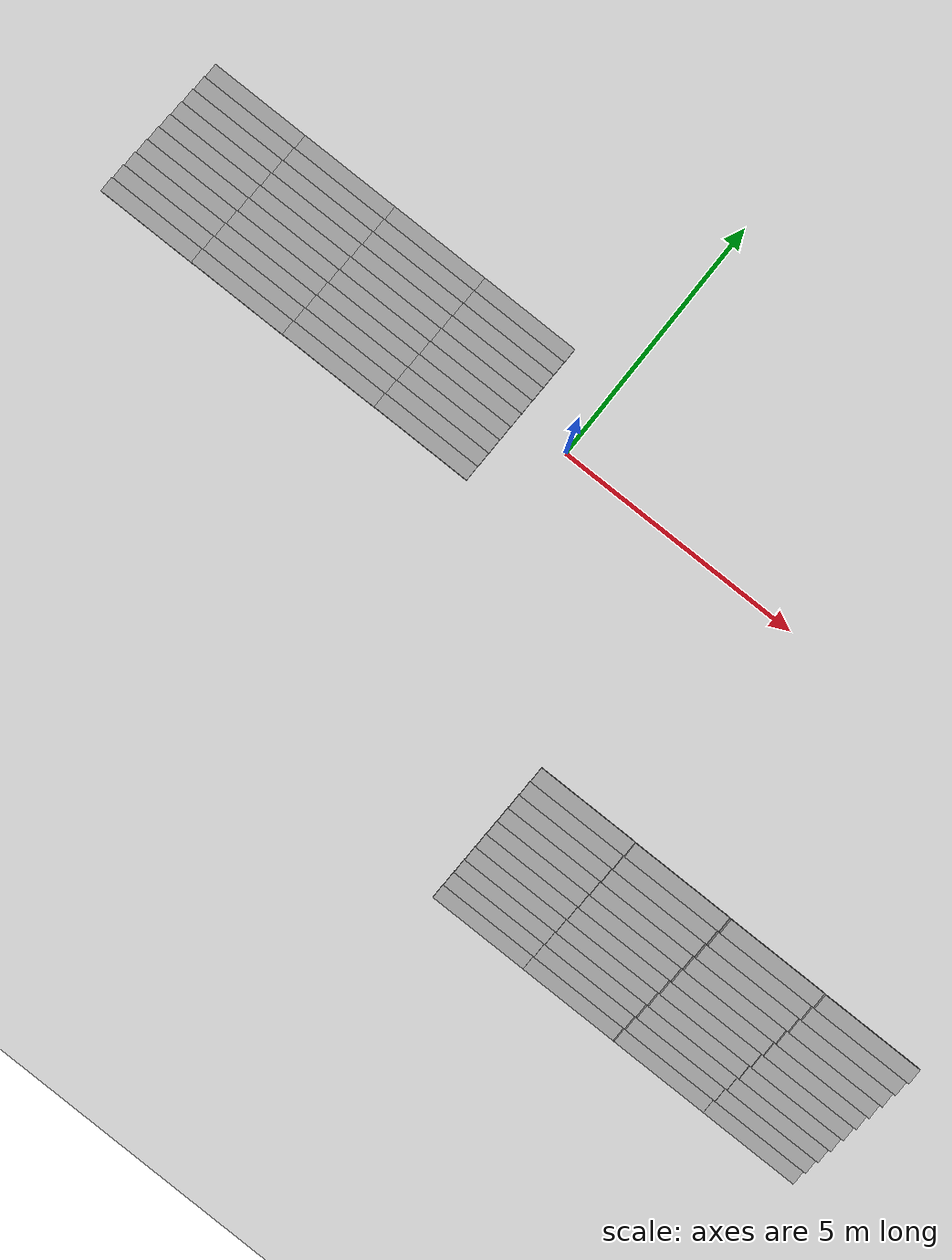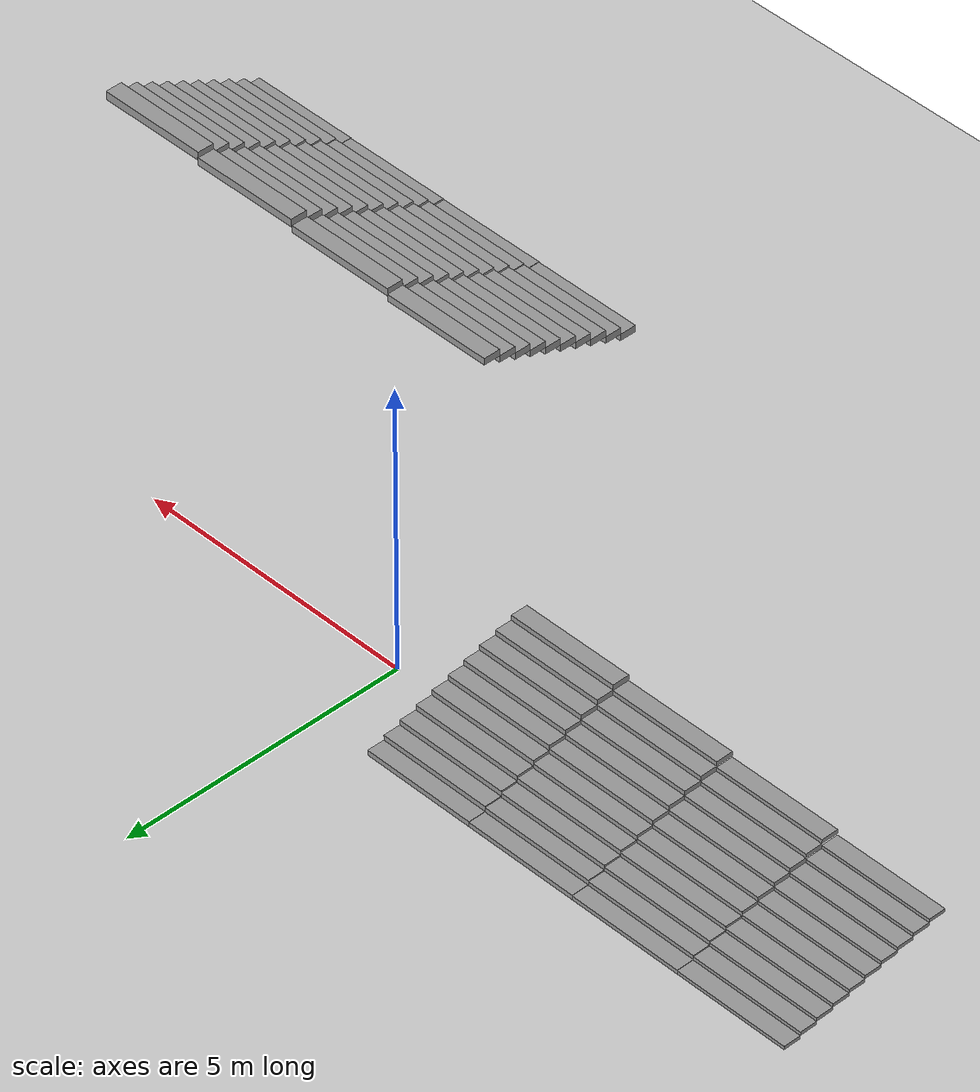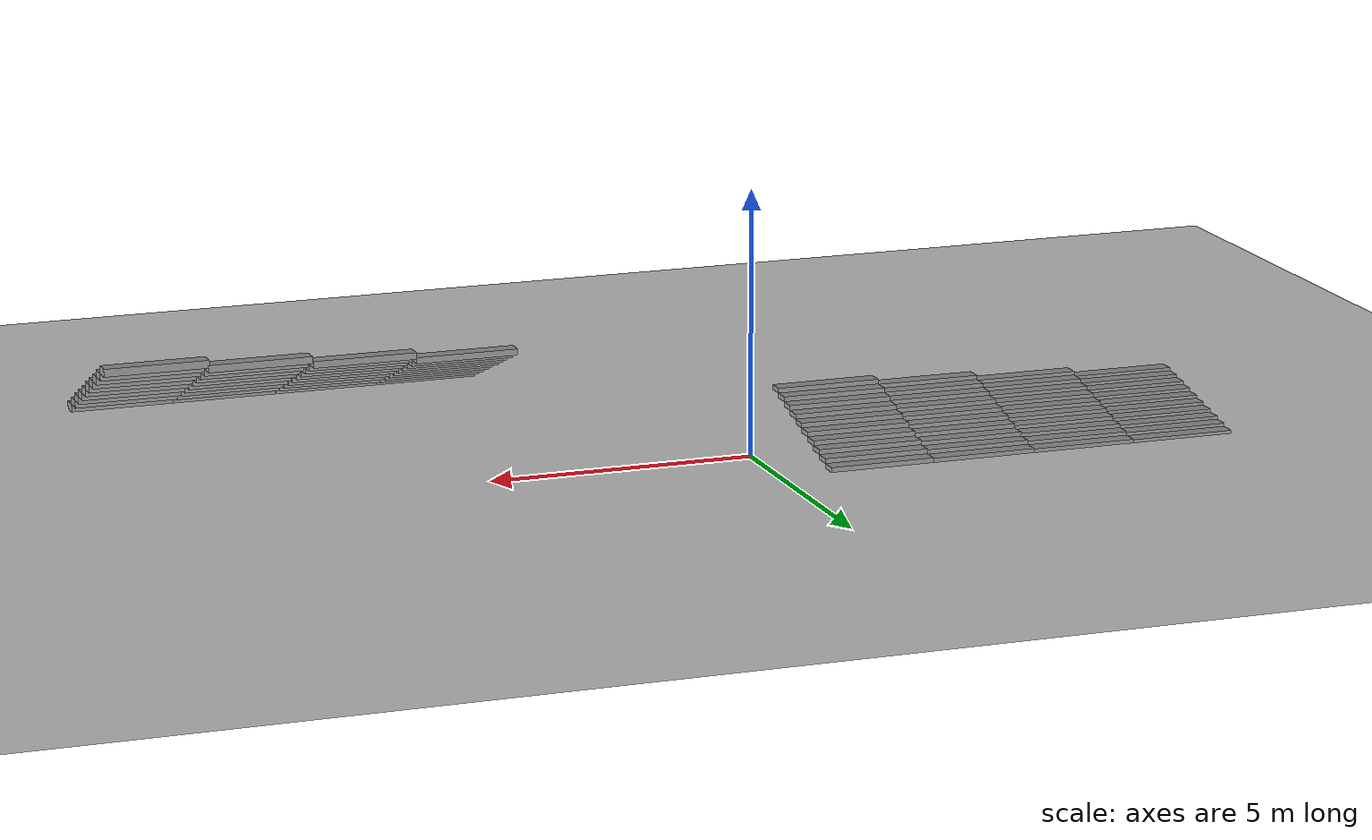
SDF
<sdf version="1.6">
 <world name="default">
  <model name="ground_plane">
   <static>1</static>
   <link name="link">
    <collision name="collision">
     <geometry><plane><normal>0 0 1</normal><size>100 100</size></plane></geometry>
     <surface>
      <contact><collide_bitmask>65535</collide_bitmask></contact>
      <friction><ode><mu>100</mu><mu2>50</mu2></ode></friction>
     </surface>
    </collision>
    <visual name="visual">
     <cast_shadows>0</cast_shadows>
     <geometry><plane><normal>0 0 1</normal><size>100 100</size></plane></geometry>
     <material>
      <script><uri>file://media/materials/scripts/gazebo.material</uri><name>Gazebo/Grey</name></script>
     </material>
    </visual>
   </link>
  </model>
  <model name="StairsWorld3">
   <pose>0 -3 0 0 -0 0</pose>
   <link name="Stairs_20">
    <visual name="Stairs_20_Visual_0">
     <pose>4 -4.35 0.06 0 0 -3.14159</pose>
     <geometry><box><size>2 0.3 0.12</size></box></geometry>
     <material>
      <script><uri>file://media/materials/scripts/gazebo.material</uri><name>Gazebo/Grey</name></script>
      <ambient>1 1 1 1</ambient>
     </material>
     <meta><layer>0</layer></meta>
    </visual>
    <collision name="Stairs_20_Collision_0">
     <geometry><box><size>2 0.3 0.12</size></box></geometry>
     <pose>4 -4.35 0.06 0 0 -3.14159</pose>
    </collision>
    <visual name="Stairs_20_Visual_1">
     <pose>4 -4.05 0.18 0 0 -3.14159</pose>
     <geometry><box><size>2 0.3 0.12</size></box></geometry>
     <material>
      <script><uri>file://media/materials/scripts/gazebo.material</uri><name>Gazebo/Grey</name></script>
      <ambient>1 1 1 1</ambient>
     </material>
     <meta><layer>0</layer></meta>
    </visual>
    <collision name="Stairs_20_Collision_1">
     <geometry><box><size>2 0.3 0.12</size></box></geometry>
     <pose>4 -4.05 0.18 0 0 -3.14159</pose>
    </collision>
    <visual name="Stairs_20_Visual_2">
     <pose>4 -3.75 0.3 0 0 -3.14159</pose>
     <geometry><box><size>2 0.3 0.12</size></box></geometry>
     <material>
      <script><uri>file://media/materials/scripts/gazebo.material</uri><name>Gazebo/Grey</name></script>
      <ambient>1 1 1 1</ambient>
     </material>
     <meta><layer>0</layer></meta>
    </visual>
    <collision name="Stairs_20_Collision_2">
     <geometry><box><size>2 0.3 0.12</size></box></geometry>
     <pose>4 -3.75 0.3 0 0 -3.14159</pose>
    </collision>
    <visual name="Stairs_20_Visual_3">
     <pose>4 -3.45 0.42 0 0 -3.14159</pose>
     <geometry><box><size>2 0.3 0.12</size></box></geometry>
     <material>
      <script><uri>file://media/materials/scripts/gazebo.material</uri><name>Gazebo/Grey</name></script>
      <ambient>1 1 1 1</ambient>
     </material>
     <meta><layer>0</layer></meta>
    </visual>
    <collision name="Stairs_20_Collision_3">
     <geometry><box><size>2 0.3 0.12</size></box></geometry>
     <pose>4 -3.45 0.42 0 0 -3.14159</pose>
    </collision>
    <visual name="Stairs_20_Visual_4">
     <pose>4 -3.15 0.54 0 0 -3.14159</pose>
     <geometry><box><size>2 0.3 0.12</size></box></geometry>
     <material>
      <script><uri>file://media/materials/scripts/gazebo.material</uri><name>Gazebo/Grey</name></script>
      <ambient>1 1 1 1</ambient>
     </material>
     <meta><layer>0</layer></meta>
    </visual>
    <collision name="Stairs_20_Collision_4">
     <geometry><box><size>2 0.3 0.12</size></box></geometry>
     <pose>4 -3.15 0.54 0 0 -3.14159</pose>
    </collision>
    <visual name="Stairs_20_Visual_5">
     <pose>4 -2.85 0.66 0 0 -3.14159</pose>
     <geometry><box><size>2 0.3 0.12</size></box></geometry>
     <material>
      <script><uri>file://media/materials/scripts/gazebo.material</uri><name>Gazebo/Grey</name></script>
      <ambient>1 1 1 1</ambient>
     </material>
     <meta><layer>0</layer></meta>
    </visual>
    <collision name="Stairs_20_Collision_5">
     <geometry><box><size>2 0.3 0.12</size></box></geometry>
     <pose>4 -2.85 0.66 0 0 -3.14159</pose>
    </collision>
    <visual name="Stairs_20_Visual_6">
     <pose>4 -2.55 0.78 0 0 -3.14159</pose>
     <geometry><box><size>2 0.3 0.12</size></box></geometry>
     <material>
      <script><uri>file://media/materials/scripts/gazebo.material</uri><name>Gazebo/Grey</name></script>
      <ambient>1 1 1 1</ambient>
     </material>
     <meta><layer>0</layer></meta>
    </visual>
    <collision name="Stairs_20_Collision_6">
     <geometry><box><size>2 0.3 0.12</size></box></geometry>
     <pose>4 -2.55 0.78 0 0 -3.14159</pose>
    </collision>
    <visual name="Stairs_20_Visual_7">
     <pose>4 -2.25 0.9 0 0 -3.14159</pose>
     <geometry><box><size>2 0.3 0.12</size></box></geometry>
     <material>
      <script><uri>file://media/materials/scripts/gazebo.material</uri><name>Gazebo/Grey</name></script>
      <ambient>1 1 1 1</ambient>
     </material>
     <meta><layer>0</layer></meta>
    </visual>
    <collision name="Stairs_20_Collision_7">
     <geometry><box><size>2 0.3 0.12</size></box></geometry>
     <pose>4 -2.25 0.9 0 0 -3.14159</pose>
    </collision>
    <visual name="Stairs_20_Visual_8">
     <pose>4 -1.95 1.02 0 0 -3.14159</pose>
     <geometry><box><size>2 0.3 0.12</size></box></geometry>
     <material>
      <script><uri>file://media/materials/scripts/gazebo.material</uri><name>Gazebo/Grey</name></script>
      <ambient>1 1 1 1</ambient>
     </material>
     <meta><layer>0</layer></meta>
    </visual>
    <collision name="Stairs_20_Collision_8">
     <geometry><box><size>2 0.3 0.12</size></box></geometry>
     <pose>4 -1.95 1.02 0 0 -3.14159</pose>
    </collision>
    <visual name="Stairs_20_Visual_9">
     <pose>4 -1.65 1.14 0 0 -3.14159</pose>
     <geometry><box><size>2 0.3 0.12</size></box></geometry>
     <material>
      <script><uri>file://media/materials/scripts/gazebo.material</uri><name>Gazebo/Grey</name></script>
      <ambient>1 1 1 1</ambient>
     </material>
     <meta><layer>0</layer></meta>
    </visual>
    <collision name="Stairs_20_Collision_9">
     <geometry><box><size>2 0.3 0.12</size></box></geometry>
     <pose>4 -1.65 1.14 0 0 -3.14159</pose>
    </collision>
   </link>
   <link name="Stairs_21">
    <visual name="Stairs_21_Visual_0">
     <pose>6 -4.35 0.065 0 0 -3.14159</pose>
     <geometry><box><size>2 0.3 0.13</size></box></geometry>
     <material>
      <script><uri>file://media/materials/scripts/gazebo.material</uri><name>Gazebo/Grey</name></script>
      <ambient>1 1 1 1</ambient>
     </material>
     <meta><layer>0</layer></meta>
    </visual>
    <collision name="Stairs_21_Collision_0">
     <geometry><box><size>2 0.3 0.13</size></box></geometry>
     <pose>6 -4.35 0.065 0 0 -3.14159</pose>
    </collision>
    <visual name="Stairs_21_Visual_1">
     <pose>6 -4.05 0.195 0 0 -3.14159</pose>
     <geometry><box><size>2 0.3 0.13</size></box></geometry>
     <material>
      <script><uri>file://media/materials/scripts/gazebo.material</uri><name>Gazebo/Grey</name></script>
      <ambient>1 1 1 1</ambient>
     </material>
     <meta><layer>0</layer></meta>
    </visual>
    <collision name="Stairs_21_Collision_1">
     <geometry><box><size>2 0.3 0.13</size></box></geometry>
     <pose>6 -4.05 0.195 0 0 -3.14159</pose>
    </collision>
    <visual name="Stairs_21_Visual_2">
     <pose>6 -3.75 0.325 0 0 -3.14159</pose>
     <geometry><box><size>2 0.3 0.13</size></box></geometry>
     <material>
      <script><uri>file://media/materials/scripts/gazebo.material</uri><name>Gazebo/Grey</name></script>
      <ambient>1 1 1 1</ambient>
     </material>
     <meta><layer>0</layer></meta>
    </visual>
    <collision name="Stairs_21_Collision_2">
     <geometry><box><size>2 0.3 0.13</size></box></geometry>
     <pose>6 -3.75 0.325 0 0 -3.14159</pose>
    </collision>
    <visual name="Stairs_21_Visual_3">
     <pose>6 -3.45 0.455 0 0 -3.14159</pose>
     <geometry><box><size>2 0.3 0.13</size></box></geometry>
     <material>
      <script><uri>file://media/materials/scripts/gazebo.material</uri><name>Gazebo/Grey</name></script>
      <ambient>1 1 1 1</ambient>
     </material>
     <meta><layer>0</layer></meta>
    </visual>
    <collision name="Stairs_21_Collision_3">
     <geometry><box><size>2 0.3 0.13</size></box></geometry>
     <pose>6 -3.45 0.455 0 0 -3.14159</pose>
    </collision>
    <visual name="Stairs_21_Visual_4">
     <pose>6 -3.15 0.585 0 0 -3.14159</pose>
     <geometry><box><size>2 0.3 0.13</size></box></geometry>
     <material>
      <script><uri>file://media/materials/scripts/gazebo.material</uri><name>Gazebo/Grey</name></script>
      <ambient>1 1 1 1</ambient>
     </material>
     <meta><layer>0</layer></meta>
    </visual>
    <collision name="Stairs_21_Collision_4">
     <geometry><box><size>2 0.3 0.13</size></box></geometry>
     <pose>6 -3.15 0.585 0 0 -3.14159</pose>
    </collision>
    <visual name="Stairs_21_Visual_5">
     <pose>6 -2.85 0.715 0 0 -3.14159</pose>
     <geometry><box><size>2 0.3 0.13</size></box></geometry>
     <material>
      <script><uri>file://media/materials/scripts/gazebo.material</uri><name>Gazebo/Grey</name></script>
      <ambient>1 1 1 1</ambient>
     </material>
     <meta><layer>0</layer></meta>
    </visual>
    <collision name="Stairs_21_Collision_5">
     <geometry><box><size>2 0.3 0.13</size></box></geometry>
     <pose>6 -2.85 0.715 0 0 -3.14159</pose>
    </collision>
    <visual name="Stairs_21_Visual_6">
     <pose>6 -2.55 0.845 0 0 -3.14159</pose>
     <geometry><box><size>2 0.3 0.13</size></box></geometry>
     <material>
      <script><uri>file://media/materials/scripts/gazebo.material</uri><name>Gazebo/Grey</name></script>
      <ambient>1 1 1 1</ambient>
     </material>
     <meta><layer>0</layer></meta>
    </visual>
    <collision name="Stairs_21_Collision_6">
     <geometry><box><size>2 0.3 0.13</size></box></geometry>
     <pose>6 -2.55 0.845 0 0 -3.14159</pose>
    </collision>
    <visual name="Stairs_21_Visual_7">
     <pose>6 -2.25 0.975 0 0 -3.14159</pose>
     <geometry><box><size>2 0.3 0.13</size></box></geometry>
     <material>
      <script><uri>file://media/materials/scripts/gazebo.material</uri><name>Gazebo/Grey</name></script>
      <ambient>1 1 1 1</ambient>
     </material>
     <meta><layer>0</layer></meta>
    </visual>
    <collision name="Stairs_21_Collision_7">
     <geometry><box><size>2 0.3 0.13</size></box></geometry>
     <pose>6 -2.25 0.975 0 0 -3.14159</pose>
    </collision>
    <visual name="Stairs_21_Visual_8">
     <pose>6 -1.95 1.105 0 0 -3.14159</pose>
     <geometry><box><size>2 0.3 0.13</size></box></geometry>
     <material>
      <script><uri>file://media/materials/scripts/gazebo.material</uri><name>Gazebo/Grey</name></script>
      <ambient>1 1 1 1</ambient>
     </material>
     <meta><layer>0</layer></meta>
    </visual>
    <collision name="Stairs_21_Collision_8">
     <geometry><box><size>2 0.3 0.13</size></box></geometry>
     <pose>6 -1.95 1.105 0 0 -3.14159</pose>
    </collision>
    <visual name="Stairs_21_Visual_9">
     <pose>6 -1.65 1.235 0 0 -3.14159</pose>
     <geometry><box><size>2 0.3 0.13</size></box></geometry>
     <material>
      <script><uri>file://media/materials/scripts/gazebo.material</uri><name>Gazebo/Grey</name></script>
      <ambient>1 1 1 1</ambient>
     </material>
     <meta><layer>0</layer></meta>
    </visual>
    <collision name="Stairs_21_Collision_9">
     <geometry><box><size>2 0.3 0.13</size></box></geometry>
     <pose>6 -1.65 1.235 0 0 -3.14159</pose>
    </collision>
   </link>
   <link name="Stairs_24">
    <visual name="Stairs_24_Visual_0">
     <pose>8.02011 -4.35 0.07 0 -0 -3.14159</pose>
     <geometry><box><size>2 0.3 0.14</size></box></geometry>
     <material>
      <script><uri>file://media/materials/scripts/gazebo.material</uri><name>Gazebo/Grey</name></script>
      <ambient>1 1 1 1</ambient>
     </material>
     <meta><layer>0</layer></meta>
    </visual>
    <collision name="Stairs_24_Collision_0">
     <geometry><box><size>2 0.3 0.14</size></box></geometry>
     <pose>8.02011 -4.35 0.07 0 -0 -3.14159</pose>
    </collision>
    <visual name="Stairs_24_Visual_1">
     <pose>8.02011 -4.05 0.21 0 -0 -3.14159</pose>
     <geometry><box><size>2 0.3 0.14</size></box></geometry>
     <material>
      <script><uri>file://media/materials/scripts/gazebo.material</uri><name>Gazebo/Grey</name></script>
      <ambient>1 1 1 1</ambient>
     </material>
     <meta><layer>0</layer></meta>
    </visual>
    <collision name="Stairs_24_Collision_1">
     <geometry><box><size>2 0.3 0.14</size></box></geometry>
     <pose>8.02011 -4.05 0.21 0 -0 -3.14159</pose>
    </collision>
    <visual name="Stairs_24_Visual_2">
     <pose>8.02011 -3.75 0.35 0 -0 -3.14159</pose>
     <geometry><box><size>2 0.3 0.14</size></box></geometry>
     <material>
      <script><uri>file://media/materials/scripts/gazebo.material</uri><name>Gazebo/Grey</name></script>
      <ambient>1 1 1 1</ambient>
     </material>
     <meta><layer>0</layer></meta>
    </visual>
    <collision name="Stairs_24_Collision_2">
     <geometry><box><size>2 0.3 0.14</size></box></geometry>
     <pose>8.02011 -3.75 0.35 0 -0 -3.14159</pose>
    </collision>
    <visual name="Stairs_24_Visual_3">
     <pose>8.02011 -3.45 0.49 0 -0 -3.14159</pose>
     <geometry><box><size>2 0.3 0.14</size></box></geometry>
     <material>
      <script><uri>file://media/materials/scripts/gazebo.material</uri><name>Gazebo/Grey</name></script>
      <ambient>1 1 1 1</ambient>
     </material>
     <meta><layer>0</layer></meta>
    </visual>
    <collision name="Stairs_24_Collision_3">
     <geometry><box><size>2 0.3 0.14</size></box></geometry>
     <pose>8.02011 -3.45 0.49 0 -0 -3.14159</pose>
    </collision>
    <visual name="Stairs_24_Visual_4">
     <pose>8.02011 -3.15 0.63 0 -0 -3.14159</pose>
     <geometry><box><size>2 0.3 0.14</size></box></geometry>
     <material>
      <script><uri>file://media/materials/scripts/gazebo.material</uri><name>Gazebo/Grey</name></script>
      <ambient>1 1 1 1</ambient>
     </material>
     <meta><layer>0</layer></meta>
    </visual>
    <collision name="Stairs_24_Collision_4">
     <geometry><box><size>2 0.3 0.14</size></box></geometry>
     <pose>8.02011 -3.15 0.63 0 -0 -3.14159</pose>
    </collision>
    <visual name="Stairs_24_Visual_5">
     <pose>8.02011 -2.85 0.77 0 -0 -3.14159</pose>
     <geometry><box><size>2 0.3 0.14</size></box></geometry>
     <material>
      <script><uri>file://media/materials/scripts/gazebo.material</uri><name>Gazebo/Grey</name></script>
      <ambient>1 1 1 1</ambient>
     </material>
     <meta><layer>0</layer></meta>
    </visual>
    <collision name="Stairs_24_Collision_5">
     <geometry><box><size>2 0.3 0.14</size></box></geometry>
     <pose>8.02011 -2.85 0.77 0 -0 -3.14159</pose>
    </collision>
    <visual name="Stairs_24_Visual_6">
     <pose>8.02011 -2.55 0.91 0 -0 -3.14159</pose>
     <geometry><box><size>2 0.3 0.14</size></box></geometry>
     <material>
      <script><uri>file://media/materials/scripts/gazebo.material</uri><name>Gazebo/Grey</name></script>
      <ambient>1 1 1 1</ambient>
     </material>
     <meta><layer>0</layer></meta>
    </visual>
    <collision name="Stairs_24_Collision_6">
     <geometry><box><size>2 0.3 0.14</size></box></geometry>
     <pose>8.02011 -2.55 0.91 0 -0 -3.14159</pose>
    </collision>
    <visual name="Stairs_24_Visual_7">
     <pose>8.02011 -2.25 1.05 0 -0 -3.14159</pose>
     <geometry><box><size>2 0.3 0.14</size></box></geometry>
     <material>
      <script><uri>file://media/materials/scripts/gazebo.material</uri><name>Gazebo/Grey</name></script>
      <ambient>1 1 1 1</ambient>
     </material>
     <meta><layer>0</layer></meta>
    </visual>
    <collision name="Stairs_24_Collision_7">
     <geometry><box><size>2 0.3 0.14</size></box></geometry>
     <pose>8.02011 -2.25 1.05 0 -0 -3.14159</pose>
    </collision>
    <visual name="Stairs_24_Visual_8">
     <pose>8.02011 -1.95 1.19 0 -0 -3.14159</pose>
     <geometry><box><size>2 0.3 0.14</size></box></geometry>
     <material>
      <script><uri>file://media/materials/scripts/gazebo.material</uri><name>Gazebo/Grey</name></script>
      <ambient>1 1 1 1</ambient>
     </material>
     <meta><layer>0</layer></meta>
    </visual>
    <collision name="Stairs_24_Collision_8">
     <geometry><box><size>2 0.3 0.14</size></box></geometry>
     <pose>8.02011 -1.95 1.19 0 -0 -3.14159</pose>
    </collision>
    <visual name="Stairs_24_Visual_9">
     <pose>8.02011 -1.65 1.33 0 -0 -3.14159</pose>
     <geometry><box><size>2 0.3 0.14</size></box></geometry>
     <material>
      <script><uri>file://media/materials/scripts/gazebo.material</uri><name>Gazebo/Grey</name></script>
      <ambient>1 1 1 1</ambient>
     </material>
     <meta><layer>0</layer></meta>
    </visual>
    <collision name="Stairs_24_Collision_9">
     <geometry><box><size>2 0.3 0.14</size></box></geometry>
     <pose>8.02011 -1.65 1.33 0 -0 -3.14159</pose>
    </collision>
   </link>
   <link name="Stairs_25">
    <visual name="Stairs_25_Visual_0">
     <pose>10 -4.35 0.075 0 0 -3.14159</pose>
     <geometry><box><size>2 0.3 0.15</size></box></geometry>
     <material>
      <script><uri>file://media/materials/scripts/gazebo.material</uri><name>Gazebo/Grey</name></script>
      <ambient>1 1 1 1</ambient>
     </material>
     <meta><layer>0</layer></meta>
    </visual>
    <collision name="Stairs_25_Collision_0">
     <geometry><box><size>2 0.3 0.15</size></box></geometry>
     <pose>10 -4.35 0.075 0 0 -3.14159</pose>
    </collision>
    <visual name="Stairs_25_Visual_1">
     <pose>10 -4.05 0.225 0 0 -3.14159</pose>
     <geometry><box><size>2 0.3 0.15</size></box></geometry>
     <material>
      <script><uri>file://media/materials/scripts/gazebo.material</uri><name>Gazebo/Grey</name></script>
      <ambient>1 1 1 1</ambient>
     </material>
     <meta><layer>0</layer></meta>
    </visual>
    <collision name="Stairs_25_Collision_1">
     <geometry><box><size>2 0.3 0.15</size></box></geometry>
     <pose>10 -4.05 0.225 0 0 -3.14159</pose>
    </collision>
    <visual name="Stairs_25_Visual_2">
     <pose>10 -3.75 0.375 0 0 -3.14159</pose>
     <geometry><box><size>2 0.3 0.15</size></box></geometry>
     <material>
      <script><uri>file://media/materials/scripts/gazebo.material</uri><name>Gazebo/Grey</name></script>
      <ambient>1 1 1 1</ambient>
     </material>
     <meta><layer>0</layer></meta>
    </visual>
    <collision name="Stairs_25_Collision_2">
     <geometry><box><size>2 0.3 0.15</size></box></geometry>
     <pose>10 -3.75 0.375 0 0 -3.14159</pose>
    </collision>
    <visual name="Stairs_25_Visual_3">
     <pose>10 -3.45 0.525 0 0 -3.14159</pose>
     <geometry><box><size>2 0.3 0.15</size></box></geometry>
     <material>
      <script><uri>file://media/materials/scripts/gazebo.material</uri><name>Gazebo/Grey</name></script>
      <ambient>1 1 1 1</ambient>
     </material>
     <meta><layer>0</layer></meta>
    </visual>
    <collision name="Stairs_25_Collision_3">
     <geometry><box><size>2 0.3 0.15</size></box></geometry>
     <pose>10 -3.45 0.525 0 0 -3.14159</pose>
    </collision>
    <visual name="Stairs_25_Visual_4">
     <pose>10 -3.15 0.675 0 0 -3.14159</pose>
     <geometry><box><size>2 0.3 0.15</size></box></geometry>
     <material>
      <script><uri>file://media/materials/scripts/gazebo.material</uri><name>Gazebo/Grey</name></script>
      <ambient>1 1 1 1</ambient>
     </material>
     <meta><layer>0</layer></meta>
    </visual>
    <collision name="Stairs_25_Collision_4">
     <geometry><box><size>2 0.3 0.15</size></box></geometry>
     <pose>10 -3.15 0.675 0 0 -3.14159</pose>
    </collision>
    <visual name="Stairs_25_Visual_5">
     <pose>10 -2.85 0.825 0 0 -3.14159</pose>
     <geometry><box><size>2 0.3 0.15</size></box></geometry>
     <material>
      <script><uri>file://media/materials/scripts/gazebo.material</uri><name>Gazebo/Grey</name></script>
      <ambient>1 1 1 1</ambient>
     </material>
     <meta><layer>0</layer></meta>
    </visual>
    <collision name="Stairs_25_Collision_5">
     <geometry><box><size>2 0.3 0.15</size></box></geometry>
     <pose>10 -2.85 0.825 0 0 -3.14159</pose>
    </collision>
    <visual name="Stairs_25_Visual_6">
     <pose>10 -2.55 0.975 0 0 -3.14159</pose>
     <geometry><box><size>2 0.3 0.15</size></box></geometry>
     <material>
      <script><uri>file://media/materials/scripts/gazebo.material</uri><name>Gazebo/Grey</name></script>
      <ambient>1 1 1 1</ambient>
     </material>
     <meta><layer>0</layer></meta>
    </visual>
    <collision name="Stairs_25_Collision_6">
     <geometry><box><size>2 0.3 0.15</size></box></geometry>
     <pose>10 -2.55 0.975 0 0 -3.14159</pose>
    </collision>
    <visual name="Stairs_25_Visual_7">
     <pose>10 -2.25 1.125 0 0 -3.14159</pose>
     <geometry><box><size>2 0.3 0.15</size></box></geometry>
     <material>
      <script><uri>file://media/materials/scripts/gazebo.material</uri><name>Gazebo/Grey</name></script>
      <ambient>1 1 1 1</ambient>
     </material>
     <meta><layer>0</layer></meta>
    </visual>
    <collision name="Stairs_25_Collision_7">
     <geometry><box><size>2 0.3 0.15</size></box></geometry>
     <pose>10 -2.25 1.125 0 0 -3.14159</pose>
    </collision>
    <visual name="Stairs_25_Visual_8">
     <pose>10 -1.95 1.275 0 0 -3.14159</pose>
     <geometry><box><size>2 0.3 0.15</size></box></geometry>
     <material>
      <script><uri>file://media/materials/scripts/gazebo.material</uri><name>Gazebo/Grey</name></script>
      <ambient>1 1 1 1</ambient>
     </material>
     <meta><layer>0</layer></meta>
    </visual>
    <collision name="Stairs_25_Collision_8">
     <geometry><box><size>2 0.3 0.15</size></box></geometry>
     <pose>10 -1.95 1.275 0 0 -3.14159</pose>
    </collision>
    <visual name="Stairs_25_Visual_9">
     <pose>10 -1.65 1.425 0 0 -3.14159</pose>
     <geometry><box><size>2 0.3 0.15</size></box></geometry>
     <material>
      <script><uri>file://media/materials/scripts/gazebo.material</uri><name>Gazebo/Grey</name></script>
      <ambient>1 1 1 1</ambient>
     </material>
     <meta><layer>0</layer></meta>
    </visual>
    <collision name="Stairs_25_Collision_9">
     <geometry><box><size>2 0.3 0.15</size></box></geometry>
     <pose>10 -1.65 1.425 0 0 -3.14159</pose>
    </collision>
   </link>
   <link name="Stairs_29">
    <visual name="Stairs_29_Visual_0">
     <pose>-2 4.35 0.045 0 -0 0</pose>
     <geometry><box><size>2 0.3 0.09</size></box></geometry>
     <material>
      <script><uri>file://media/materials/scripts/gazebo.material</uri><name>Gazebo/Grey</name></script>
      <ambient>1 1 1 1</ambient>
     </material>
     <meta><layer>0</layer></meta>
    </visual>
    <collision name="Stairs_29_Collision_0">
     <geometry><box><size>2 0.3 0.09</size></box></geometry>
     <pose>-2 4.35 0.045 0 -0 0</pose>
    </collision>
    <visual name="Stairs_29_Visual_1">
     <pose>-2 4.05 0.135 0 -0 0</pose>
     <geometry><box><size>2 0.3 0.09</size></box></geometry>
     <material>
      <script><uri>file://media/materials/scripts/gazebo.material</uri><name>Gazebo/Grey</name></script>
      <ambient>1 1 1 1</ambient>
     </material>
     <meta><layer>0</layer></meta>
    </visual>
    <collision name="Stairs_29_Collision_1">
     <geometry><box><size>2 0.3 0.09</size></box></geometry>
     <pose>-2 4.05 0.135 0 -0 0</pose>
    </collision>
    <visual name="Stairs_29_Visual_2">
     <pose>-2 3.75 0.225 0 -0 0</pose>
     <geometry><box><size>2 0.3 0.09</size></box></geometry>
     <material>
      <script><uri>file://media/materials/scripts/gazebo.material</uri><name>Gazebo/Grey</name></script>
      <ambient>1 1 1 1</ambient>
     </material>
     <meta><layer>0</layer></meta>
    </visual>
    <collision name="Stairs_29_Collision_2">
     <geometry><box><size>2 0.3 0.09</size></box></geometry>
     <pose>-2 3.75 0.225 0 -0 0</pose>
    </collision>
    <visual name="Stairs_29_Visual_3">
     <pose>-2 3.45 0.315 0 -0 0</pose>
     <geometry><box><size>2 0.3 0.09</size></box></geometry>
     <material>
      <script><uri>file://media/materials/scripts/gazebo.material</uri><name>Gazebo/Grey</name></script>
      <ambient>1 1 1 1</ambient>
     </material>
     <meta><layer>0</layer></meta>
    </visual>
    <collision name="Stairs_29_Collision_3">
     <geometry><box><size>2 0.3 0.09</size></box></geometry>
     <pose>-2 3.45 0.315 0 -0 0</pose>
    </collision>
    <visual name="Stairs_29_Visual_4">
     <pose>-2 3.15 0.405 0 -0 0</pose>
     <geometry><box><size>2 0.3 0.09</size></box></geometry>
     <material>
      <script><uri>file://media/materials/scripts/gazebo.material</uri><name>Gazebo/Grey</name></script>
      <ambient>1 1 1 1</ambient>
     </material>
     <meta><layer>0</layer></meta>
    </visual>
    <collision name="Stairs_29_Collision_4">
     <geometry><box><size>2 0.3 0.09</size></box></geometry>
     <pose>-2 3.15 0.405 0 -0 0</pose>
    </collision>
    <visual name="Stairs_29_Visual_5">
     <pose>-2 2.85 0.495 0 -0 0</pose>
     <geometry><box><size>2 0.3 0.09</size></box></geometry>
     <material>
      <script><uri>file://media/materials/scripts/gazebo.material</uri><name>Gazebo/Grey</name></script>
      <ambient>1 1 1 1</ambient>
     </material>
     <meta><layer>0</layer></meta>
    </visual>
    <collision name="Stairs_29_Collision_5">
     <geometry><box><size>2 0.3 0.09</size></box></geometry>
     <pose>-2 2.85 0.495 0 -0 0</pose>
    </collision>
    <visual name="Stairs_29_Visual_6">
     <pose>-2 2.55 0.585 0 -0 0</pose>
     <geometry><box><size>2 0.3 0.09</size></box></geometry>
     <material>
      <script><uri>file://media/materials/scripts/gazebo.material</uri><name>Gazebo/Grey</name></script>
      <ambient>1 1 1 1</ambient>
     </material>
     <meta><layer>0</layer></meta>
    </visual>
    <collision name="Stairs_29_Collision_6">
     <geometry><box><size>2 0.3 0.09</size></box></geometry>
     <pose>-2 2.55 0.585 0 -0 0</pose>
    </collision>
    <visual name="Stairs_29_Visual_7">
     <pose>-2 2.25 0.675 0 -0 0</pose>
     <geometry><box><size>2 0.3 0.09</size></box></geometry>
     <material>
      <script><uri>file://media/materials/scripts/gazebo.material</uri><name>Gazebo/Grey</name></script>
      <ambient>1 1 1 1</ambient>
     </material>
     <meta><layer>0</layer></meta>
    </visual>
    <collision name="Stairs_29_Collision_7">
     <geometry><box><size>2 0.3 0.09</size></box></geometry>
     <pose>-2 2.25 0.675 0 -0 0</pose>
    </collision>
    <visual name="Stairs_29_Visual_8">
     <pose>-2 1.95 0.765 0 -0 0</pose>
     <geometry><box><size>2 0.3 0.09</size></box></geometry>
     <material>
      <script><uri>file://media/materials/scripts/gazebo.material</uri><name>Gazebo/Grey</name></script>
      <ambient>1 1 1 1</ambient>
     </material>
     <meta><layer>0</layer></meta>
    </visual>
    <collision name="Stairs_29_Collision_8">
     <geometry><box><size>2 0.3 0.09</size></box></geometry>
     <pose>-2 1.95 0.765 0 -0 0</pose>
    </collision>
    <visual name="Stairs_29_Visual_9">
     <pose>-2 1.65 0.855 0 -0 0</pose>
     <geometry><box><size>2 0.3 0.09</size></box></geometry>
     <material>
      <script><uri>file://media/materials/scripts/gazebo.material</uri><name>Gazebo/Grey</name></script>
      <ambient>1 1 1 1</ambient>
     </material>
     <meta><layer>0</layer></meta>
    </visual>
    <collision name="Stairs_29_Collision_9">
     <geometry><box><size>2 0.3 0.09</size></box></geometry>
     <pose>-2 1.65 0.855 0 -0 0</pose>
    </collision>
   </link>
   <link name="Stairs_30">
    <visual name="Stairs_30_Visual_0">
     <pose>-4 4.35 0.04 0 -0 0</pose>
     <geometry><box><size>2 0.3 0.08</size></box></geometry>
     <material>
      <script><uri>file://media/materials/scripts/gazebo.material</uri><name>Gazebo/Grey</name></script>
      <ambient>1 1 1 1</ambient>
     </material>
     <meta><layer>0</layer></meta>
    </visual>
    <collision name="Stairs_30_Collision_0">
     <geometry><box><size>2 0.3 0.08</size></box></geometry>
     <pose>-4 4.35 0.04 0 -0 0</pose>
    </collision>
    <visual name="Stairs_30_Visual_1">
     <pose>-4 4.05 0.12 0 -0 0</pose>
     <geometry><box><size>2 0.3 0.08</size></box></geometry>
     <material>
      <script><uri>file://media/materials/scripts/gazebo.material</uri><name>Gazebo/Grey</name></script>
      <ambient>1 1 1 1</ambient>
     </material>
     <meta><layer>0</layer></meta>
    </visual>
    <collision name="Stairs_30_Collision_1">
     <geometry><box><size>2 0.3 0.08</size></box></geometry>
     <pose>-4 4.05 0.12 0 -0 0</pose>
    </collision>
    <visual name="Stairs_30_Visual_2">
     <pose>-4 3.75 0.2 0 -0 0</pose>
     <geometry><box><size>2 0.3 0.08</size></box></geometry>
     <material>
      <script><uri>file://media/materials/scripts/gazebo.material</uri><name>Gazebo/Grey</name></script>
      <ambient>1 1 1 1</ambient>
     </material>
     <meta><layer>0</layer></meta>
    </visual>
    <collision name="Stairs_30_Collision_2">
     <geometry><box><size>2 0.3 0.08</size></box></geometry>
     <pose>-4 3.75 0.2 0 -0 0</pose>
    </collision>
    <visual name="Stairs_30_Visual_3">
     <pose>-4 3.45 0.28 0 -0 0</pose>
     <geometry><box><size>2 0.3 0.08</size></box></geometry>
     <material>
      <script><uri>file://media/materials/scripts/gazebo.material</uri><name>Gazebo/Grey</name></script>
      <ambient>1 1 1 1</ambient>
     </material>
     <meta><layer>0</layer></meta>
    </visual>
    <collision name="Stairs_30_Collision_3">
     <geometry><box><size>2 0.3 0.08</size></box></geometry>
     <pose>-4 3.45 0.28 0 -0 0</pose>
    </collision>
    <visual name="Stairs_30_Visual_4">
     <pose>-4 3.15 0.36 0 -0 0</pose>
     <geometry><box><size>2 0.3 0.08</size></box></geometry>
     <material>
      <script><uri>file://media/materials/scripts/gazebo.material</uri><name>Gazebo/Grey</name></script>
      <ambient>1 1 1 1</ambient>
     </material>
     <meta><layer>0</layer></meta>
    </visual>
    <collision name="Stairs_30_Collision_4">
     <geometry><box><size>2 0.3 0.08</size></box></geometry>
     <pose>-4 3.15 0.36 0 -0 0</pose>
    </collision>
    <visual name="Stairs_30_Visual_5">
     <pose>-4 2.85 0.44 0 -0 0</pose>
     <geometry><box><size>2 0.3 0.08</size></box></geometry>
     <material>
      <script><uri>file://media/materials/scripts/gazebo.material</uri><name>Gazebo/Grey</name></script>
      <ambient>1 1 1 1</ambient>
     </material>
     <meta><layer>0</layer></meta>
    </visual>
    <collision name="Stairs_30_Collision_5">
     <geometry><box><size>2 0.3 0.08</size></box></geometry>
     <pose>-4 2.85 0.44 0 -0 0</pose>
    </collision>
    <visual name="Stairs_30_Visual_6">
     <pose>-4 2.55 0.52 0 -0 0</pose>
     <geometry><box><size>2 0.3 0.08</size></box></geometry>
     <material>
      <script><uri>file://media/materials/scripts/gazebo.material</uri><name>Gazebo/Grey</name></script>
      <ambient>1 1 1 1</ambient>
     </material>
     <meta><layer>0</layer></meta>
    </visual>
    <collision name="Stairs_30_Collision_6">
     <geometry><box><size>2 0.3 0.08</size></box></geometry>
     <pose>-4 2.55 0.52 0 -0 0</pose>
    </collision>
    <visual name="Stairs_30_Visual_7">
     <pose>-4 2.25 0.6 0 -0 0</pose>
     <geometry><box><size>2 0.3 0.08</size></box></geometry>
     <material>
      <script><uri>file://media/materials/scripts/gazebo.material</uri><name>Gazebo/Grey</name></script>
      <ambient>1 1 1 1</ambient>
     </material>
     <meta><layer>0</layer></meta>
    </visual>
    <collision name="Stairs_30_Collision_7">
     <geometry><box><size>2 0.3 0.08</size></box></geometry>
     <pose>-4 2.25 0.6 0 -0 0</pose>
    </collision>
    <visual name="Stairs_30_Visual_8">
     <pose>-4 1.95 0.68 0 -0 0</pose>
     <geometry><box><size>2 0.3 0.08</size></box></geometry>
     <material>
      <script><uri>file://media/materials/scripts/gazebo.material</uri><name>Gazebo/Grey</name></script>
      <ambient>1 1 1 1</ambient>
     </material>
     <meta><layer>0</layer></meta>
    </visual>
    <collision name="Stairs_30_Collision_8">
     <geometry><box><size>2 0.3 0.08</size></box></geometry>
     <pose>-4 1.95 0.68 0 -0 0</pose>
    </collision>
    <visual name="Stairs_30_Visual_9">
     <pose>-4 1.65 0.76 0 -0 0</pose>
     <geometry><box><size>2 0.3 0.08</size></box></geometry>
     <material>
      <script><uri>file://media/materials/scripts/gazebo.material</uri><name>Gazebo/Grey</name></script>
      <ambient>1 1 1 1</ambient>
     </material>
     <meta><layer>0</layer></meta>
    </visual>
    <collision name="Stairs_30_Collision_9">
     <geometry><box><size>2 0.3 0.08</size></box></geometry>
     <pose>-4 1.65 0.76 0 -0 0</pose>
    </collision>
   </link>
   <link name="Stairs_31">
    <visual name="Stairs_31_Visual_0">
     <pose>-6 4.35 0.035 0 -0 0</pose>
     <geometry><box><size>2 0.3 0.07</size></box></geometry>
     <material>
      <script><uri>file://media/materials/scripts/gazebo.material</uri><name>Gazebo/Grey</name></script>
      <ambient>1 1 1 1</ambient>
     </material>
     <meta><layer>0</layer></meta>
    </visual>
    <collision name="Stairs_31_Collision_0">
     <geometry><box><size>2 0.3 0.07</size></box></geometry>
     <pose>-6 4.35 0.035 0 -0 0</pose>
    </collision>
    <visual name="Stairs_31_Visual_1">
     <pose>-6 4.05 0.105 0 -0 0</pose>
     <geometry><box><size>2 0.3 0.07</size></box></geometry>
     <material>
      <script><uri>file://media/materials/scripts/gazebo.material</uri><name>Gazebo/Grey</name></script>
      <ambient>1 1 1 1</ambient>
     </material>
     <meta><layer>0</layer></meta>
    </visual>
    <collision name="Stairs_31_Collision_1">
     <geometry><box><size>2 0.3 0.07</size></box></geometry>
     <pose>-6 4.05 0.105 0 -0 0</pose>
    </collision>
    <visual name="Stairs_31_Visual_2">
     <pose>-6 3.75 0.175 0 -0 0</pose>
     <geometry><box><size>2 0.3 0.07</size></box></geometry>
     <material>
      <script><uri>file://media/materials/scripts/gazebo.material</uri><name>Gazebo/Grey</name></script>
      <ambient>1 1 1 1</ambient>
     </material>
     <meta><layer>0</layer></meta>
    </visual>
    <collision name="Stairs_31_Collision_2">
     <geometry><box><size>2 0.3 0.07</size></box></geometry>
     <pose>-6 3.75 0.175 0 -0 0</pose>
    </collision>
    <visual name="Stairs_31_Visual_3">
     <pose>-6 3.45 0.245 0 -0 0</pose>
     <geometry><box><size>2 0.3 0.07</size></box></geometry>
     <material>
      <script><uri>file://media/materials/scripts/gazebo.material</uri><name>Gazebo/Grey</name></script>
      <ambient>1 1 1 1</ambient>
     </material>
     <meta><layer>0</layer></meta>
    </visual>
    <collision name="Stairs_31_Collision_3">
     <geometry><box><size>2 0.3 0.07</size></box></geometry>
     <pose>-6 3.45 0.245 0 -0 0</pose>
    </collision>
    <visual name="Stairs_31_Visual_4">
     <pose>-6 3.15 0.315 0 -0 0</pose>
     <geometry><box><size>2 0.3 0.07</size></box></geometry>
     <material>
      <script><uri>file://media/materials/scripts/gazebo.material</uri><name>Gazebo/Grey</name></script>
      <ambient>1 1 1 1</ambient>
     </material>
     <meta><layer>0</layer></meta>
    </visual>
    <collision name="Stairs_31_Collision_4">
     <geometry><box><size>2 0.3 0.07</size></box></geometry>
     <pose>-6 3.15 0.315 0 -0 0</pose>
    </collision>
    <visual name="Stairs_31_Visual_5">
     <pose>-6 2.85 0.385 0 -0 0</pose>
     <geometry><box><size>2 0.3 0.07</size></box></geometry>
     <material>
      <script><uri>file://media/materials/scripts/gazebo.material</uri><name>Gazebo/Grey</name></script>
      <ambient>1 1 1 1</ambient>
     </material>
     <meta><layer>0</layer></meta>
    </visual>
    <collision name="Stairs_31_Collision_5">
     <geometry><box><size>2 0.3 0.07</size></box></geometry>
     <pose>-6 2.85 0.385 0 -0 0</pose>
    </collision>
    <visual name="Stairs_31_Visual_6">
     <pose>-6 2.55 0.455 0 -0 0</pose>
     <geometry><box><size>2 0.3 0.07</size></box></geometry>
     <material>
      <script><uri>file://media/materials/scripts/gazebo.material</uri><name>Gazebo/Grey</name></script>
      <ambient>1 1 1 1</ambient>
     </material>
     <meta><layer>0</layer></meta>
    </visual>
    <collision name="Stairs_31_Collision_6">
     <geometry><box><size>2 0.3 0.07</size></box></geometry>
     <pose>-6 2.55 0.455 0 -0 0</pose>
    </collision>
    <visual name="Stairs_31_Visual_7">
     <pose>-6 2.25 0.525 0 -0 0</pose>
     <geometry><box><size>2 0.3 0.07</size></box></geometry>
     <material>
      <script><uri>file://media/materials/scripts/gazebo.material</uri><name>Gazebo/Grey</name></script>
      <ambient>1 1 1 1</ambient>
     </material>
     <meta><layer>0</layer></meta>
    </visual>
    <collision name="Stairs_31_Collision_7">
     <geometry><box><size>2 0.3 0.07</size></box></geometry>
     <pose>-6 2.25 0.525 0 -0 0</pose>
    </collision>
    <visual name="Stairs_31_Visual_8">
     <pose>-6 1.95 0.595 0 -0 0</pose>
     <geometry><box><size>2 0.3 0.07</size></box></geometry>
     <material>
      <script><uri>file://media/materials/scripts/gazebo.material</uri><name>Gazebo/Grey</name></script>
      <ambient>1 1 1 1</ambient>
     </material>
     <meta><layer>0</layer></meta>
    </visual>
    <collision name="Stairs_31_Collision_8">
     <geometry><box><size>2 0.3 0.07</size></box></geometry>
     <pose>-6 1.95 0.595 0 -0 0</pose>
    </collision>
    <visual name="Stairs_31_Visual_9">
     <pose>-6 1.65 0.665 0 -0 0</pose>
     <geometry><box><size>2 0.3 0.07</size></box></geometry>
     <material>
      <script><uri>file://media/materials/scripts/gazebo.material</uri><name>Gazebo/Grey</name></script>
      <ambient>1 1 1 1</ambient>
     </material>
     <meta><layer>0</layer></meta>
    </visual>
    <collision name="Stairs_31_Collision_9">
     <geometry><box><size>2 0.3 0.07</size></box></geometry>
     <pose>-6 1.65 0.665 0 -0 0</pose>
    </collision>
   </link>
   <link name="Stairs_33">
    <visual name="Stairs_33_Visual_0">
     <pose>-8 4.35 0.03 0 -0 0</pose>
     <geometry><box><size>2 0.3 0.06</size></box></geometry>
     <material>
      <script><uri>file://media/materials/scripts/gazebo.material</uri><name>Gazebo/Grey</name></script>
      <ambient>1 1 1 1</ambient>
     </material>
     <meta><layer>0</layer></meta>
    </visual>
    <collision name="Stairs_33_Collision_0">
     <geometry><box><size>2 0.3 0.06</size></box></geometry>
     <pose>-8 4.35 0.03 0 -0 0</pose>
    </collision>
    <visual name="Stairs_33_Visual_1">
     <pose>-8 4.05 0.09 0 -0 0</pose>
     <geometry><box><size>2 0.3 0.06</size></box></geometry>
     <material>
      <script><uri>file://media/materials/scripts/gazebo.material</uri><name>Gazebo/Grey</name></script>
      <ambient>1 1 1 1</ambient>
     </material>
     <meta><layer>0</layer></meta>
    </visual>
    <collision name="Stairs_33_Collision_1">
     <geometry><box><size>2 0.3 0.06</size></box></geometry>
     <pose>-8 4.05 0.09 0 -0 0</pose>
    </collision>
    <visual name="Stairs_33_Visual_2">
     <pose>-8 3.75 0.15 0 -0 0</pose>
     <geometry><box><size>2 0.3 0.06</size></box></geometry>
     <material>
      <script><uri>file://media/materials/scripts/gazebo.material</uri><name>Gazebo/Grey</name></script>
      <ambient>1 1 1 1</ambient>
     </material>
     <meta><layer>0</layer></meta>
    </visual>
    <collision name="Stairs_33_Collision_2">
     <geometry><box><size>2 0.3 0.06</size></box></geometry>
     <pose>-8 3.75 0.15 0 -0 0</pose>
    </collision>
    <visual name="Stairs_33_Visual_3">
     <pose>-8 3.45 0.21 0 -0 0</pose>
     <geometry><box><size>2 0.3 0.06</size></box></geometry>
     <material>
      <script><uri>file://media/materials/scripts/gazebo.material</uri><name>Gazebo/Grey</name></script>
      <ambient>1 1 1 1</ambient>
     </material>
     <meta><layer>0</layer></meta>
    </visual>
    <collision name="Stairs_33_Collision_3">
     <geometry><box><size>2 0.3 0.06</size></box></geometry>
     <pose>-8 3.45 0.21 0 -0 0</pose>
    </collision>
    <visual name="Stairs_33_Visual_4">
     <pose>-8 3.15 0.27 0 -0 0</pose>
     <geometry><box><size>2 0.3 0.06</size></box></geometry>
     <material>
      <script><uri>file://media/materials/scripts/gazebo.material</uri><name>Gazebo/Grey</name></script>
      <ambient>1 1 1 1</ambient>
     </material>
     <meta><layer>0</layer></meta>
    </visual>
    <collision name="Stairs_33_Collision_4">
     <geometry><box><size>2 0.3 0.06</size></box></geometry>
     <pose>-8 3.15 0.27 0 -0 0</pose>
    </collision>
    <visual name="Stairs_33_Visual_5">
     <pose>-8 2.85 0.33 0 -0 0</pose>
     <geometry><box><size>2 0.3 0.06</size></box></geometry>
     <material>
      <script><uri>file://media/materials/scripts/gazebo.material</uri><name>Gazebo/Grey</name></script>
      <ambient>1 1 1 1</ambient>
     </material>
     <meta><layer>0</layer></meta>
    </visual>
    <collision name="Stairs_33_Collision_5">
     <geometry><box><size>2 0.3 0.06</size></box></geometry>
     <pose>-8 2.85 0.33 0 -0 0</pose>
    </collision>
    <visual name="Stairs_33_Visual_6">
     <pose>-8 2.55 0.39 0 -0 0</pose>
     <geometry><box><size>2 0.3 0.06</size></box></geometry>
     <material>
      <script><uri>file://media/materials/scripts/gazebo.material</uri><name>Gazebo/Grey</name></script>
      <ambient>1 1 1 1</ambient>
     </material>
     <meta><layer>0</layer></meta>
    </visual>
    <collision name="Stairs_33_Collision_6">
     <geometry><box><size>2 0.3 0.06</size></box></geometry>
     <pose>-8 2.55 0.39 0 -0 0</pose>
    </collision>
    <visual name="Stairs_33_Visual_7">
     <pose>-8 2.25 0.45 0 -0 0</pose>
     <geometry><box><size>2 0.3 0.06</size></box></geometry>
     <material>
      <script><uri>file://media/materials/scripts/gazebo.material</uri><name>Gazebo/Grey</name></script>
      <ambient>1 1 1 1</ambient>
     </material>
     <meta><layer>0</layer></meta>
    </visual>
    <collision name="Stairs_33_Collision_7">
     <geometry><box><size>2 0.3 0.06</size></box></geometry>
     <pose>-8 2.25 0.45 0 -0 0</pose>
    </collision>
    <visual name="Stairs_33_Visual_8">
     <pose>-8 1.95 0.51 0 -0 0</pose>
     <geometry><box><size>2 0.3 0.06</size></box></geometry>
     <material>
      <script><uri>file://media/materials/scripts/gazebo.material</uri><name>Gazebo/Grey</name></script>
      <ambient>1 1 1 1</ambient>
     </material>
     <meta><layer>0</layer></meta>
    </visual>
    <collision name="Stairs_33_Collision_8">
     <geometry><box><size>2 0.3 0.06</size></box></geometry>
     <pose>-8 1.95 0.51 0 -0 0</pose>
    </collision>
    <visual name="Stairs_33_Visual_9">
     <pose>-8 1.65 0.57 0 -0 0</pose>
     <geometry><box><size>2 0.3 0.06</size></box></geometry>
     <material>
      <script><uri>file://media/materials/scripts/gazebo.material</uri><name>Gazebo/Grey</name></script>
      <ambient>1 1 1 1</ambient>
     </material>
     <meta><layer>0</layer></meta>
    </visual>
    <collision name="Stairs_33_Collision_9">
     <geometry><box><size>2 0.3 0.06</size></box></geometry>
     <pose>-8 1.65 0.57 0 -0 0</pose>
    </collision>
   </link>
   <static>1</static>
  </model>
 </world>
</sdf>
